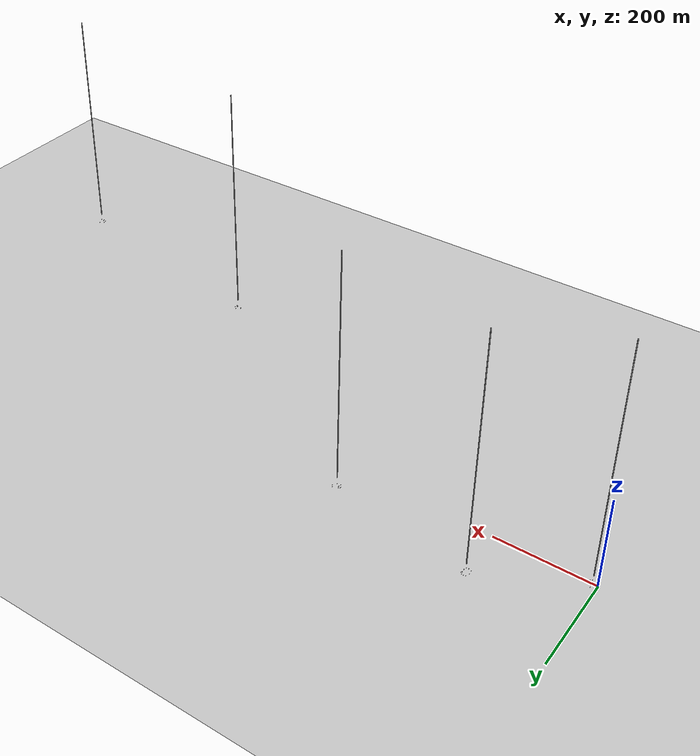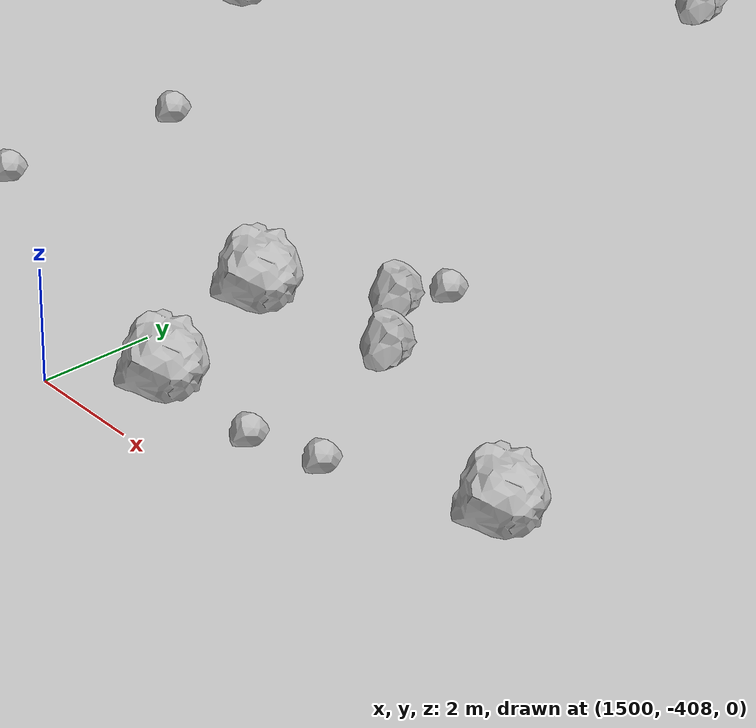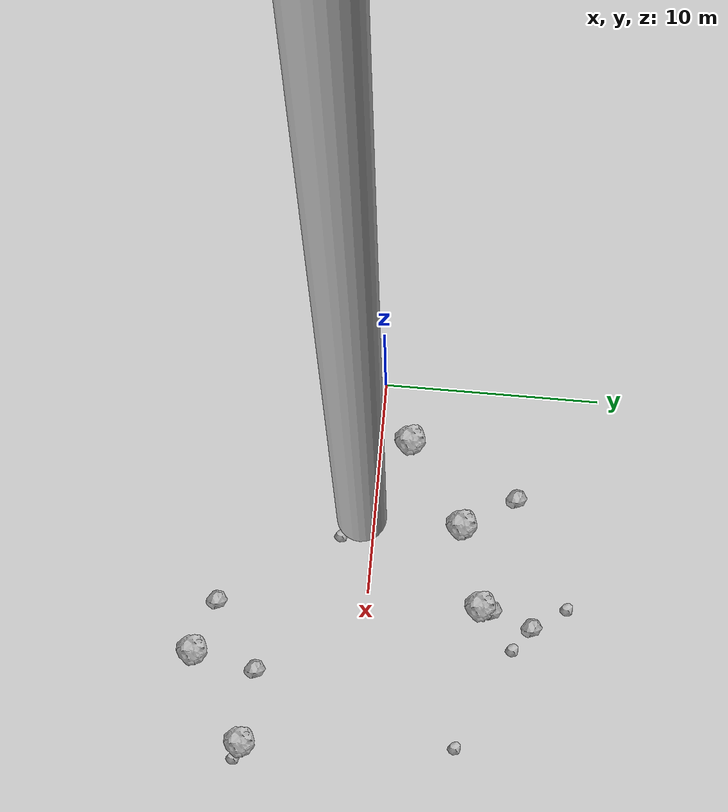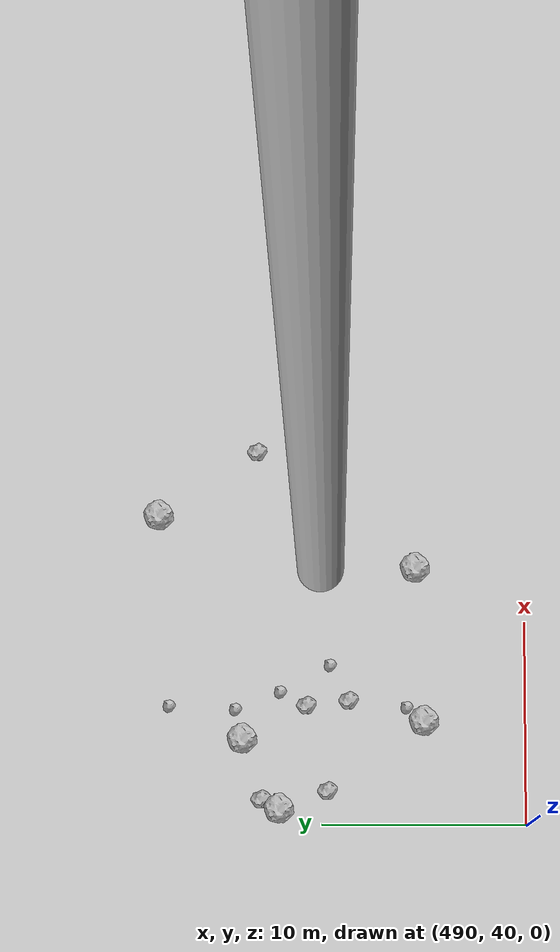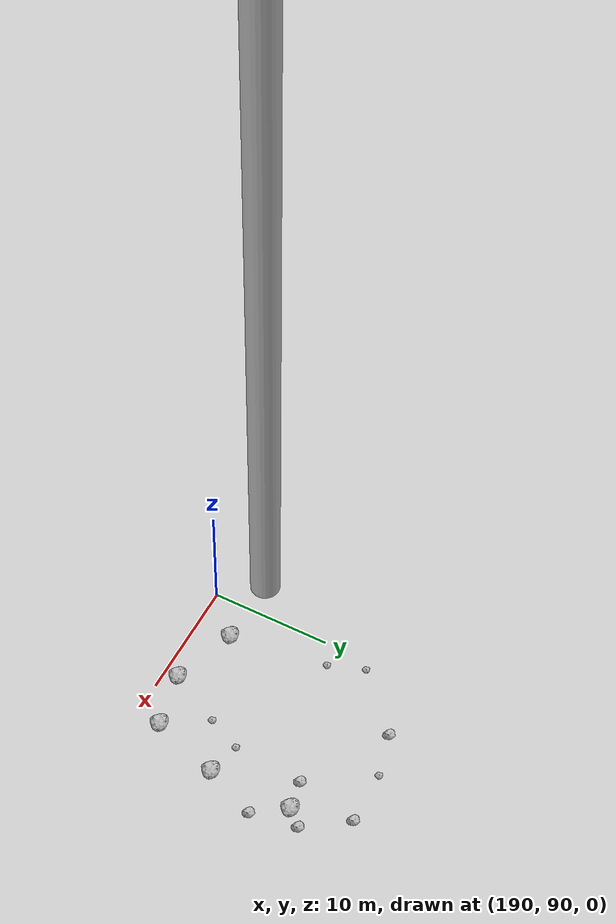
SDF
<?xml version="1.0" ?>
<sdf version="1.6">
  <world name="default">

    <include>
      <uri>model://custom_ground</uri>
    </include>

    <include>
      <uri>model://sun</uri>
    </include>

    <spherical_coordinates>
      <surface_model>EARTH_WGS84</surface_model>
      <latitude_deg>38.161479</latitude_deg>
      <longitude_deg>-122.454630</longitude_deg>
      <elevation>488.0</elevation>
      <heading_deg>90</heading_deg>
    </spherical_coordinates>

    <model name="rock1_0_0">
      <include>
        <uri>model://rock1</uri>
        <pose>13.43947939699105 -7.893989435164322 0.5 0 0 0</pose>
      </include>
    </model>
    <model name="rock1_0_1">
      <include>
        <uri>model://rock1</uri>
        <pose>10.278590785092419 5.275885005574189 0.5 0 0 0</pose>
      </include>
    </model>
    <model name="rock1_0_2">
      <include>
        <uri>model://rock1</uri>
        <pose>17.512026884619065 -5.30303912134465 0.5 0 0 0</pose>
      </include>
    </model>
    <model name="rock1_0_3">
      <include>
        <uri>model://rock1</uri>
        <pose>2.68650583499608 1.3538754878801118 0.5 0 0 0</pose>
      </include>
    </model>
    <model name="rock1_0_4">
      <include>
        <uri>model://rock1</uri>
        <pose>6.507952851055441 4.085987491831842 0.5 0 0 0</pose>
      </include>
    </model>
    <model name="rock2_0_0">
      <include>
        <uri>model://rock2</uri>
        <pose>10.954935267424323 -6.97274301312717 0.3 0 0 0</pose>
      </include>
    </model>
    <model name="rock2_0_1">
      <include>
        <uri>model://rock2</uri>
        <pose>11.044404933549345 7.736497389447649 0.3 0 0 0</pose>
      </include>
    </model>
    <model name="rock2_0_2">
      <include>
        <uri>model://rock2</uri>
        <pose>5.019256613500451 6.562638726598454 0.3 0 0 0</pose>
      </include>
    </model>
    <model name="rock2_0_3">
      <include>
        <uri>model://rock2</uri>
        <pose>10.392434274536814 5.816573287386026 0.3 0 0 0</pose>
      </include>
    </model>
    <model name="rock2_0_4">
      <include>
        <uri>model://rock2</uri>
        <pose>14.040162396159676 -4.909503907297552 0.3 0 0 0</pose>
      </include>
    </model>
    <model name="rock3_0_0">
      <include>
        <uri>model://rock3</uri>
        <pose>16.91205189435077 4.599198794809837 0.2 0 0 0</pose>
      </include>
    </model>
    <model name="rock3_0_1">
      <include>
        <uri>model://rock3</uri>
        <pose>12.138910080948467 6.8985925463445845 0.2 0 0 0</pose>
      </include>
    </model>
    <model name="rock3_0_2">
      <include>
        <uri>model://rock3</uri>
        <pose>10.020214936842125 9.281012461396593 0.2 0 0 0</pose>
      </include>
    </model>
    <model name="rock3_0_3">
      <include>
        <uri>model://rock3</uri>
        <pose>18.213776399475588 -5.568404411075212 0.2 0 0 0</pose>
      </include>
    </model>
    <model name="rock3_0_4">
      <include>
        <uri>model://rock3</uri>
        <pose>7.421650577738075 -1.486453710931757 0.2 0 0 0</pose>
      </include>
    </model>
    <model name="rock1_1_0">
      <include>
        <uri>model://rock1</uri>
        <pose>203.00260534594247 92.16119730530531 0.5 0 0 0</pose>
      </include>
    </model>
    <model name="rock1_1_1">
      <include>
        <uri>model://rock1</uri>
        <pose>198.6162523517288 91.25032018407698 0.5 0 0 0</pose>
      </include>
    </model>
    <model name="rock1_1_2">
      <include>
        <uri>model://rock1</uri>
        <pose>204.73223575123927 97.700712433322 0.5 0 0 0</pose>
      </include>
    </model>
    <model name="rock1_1_3">
      <include>
        <uri>model://rock1</uri>
        <pose>204.70719715123272 104.48081057962973 0.5 0 0 0</pose>
      </include>
    </model>
    <model name="rock1_1_4">
      <include>
        <uri>model://rock1</uri>
        <pose>193.31974319146545 93.02261638565943 0.5 0 0 0</pose>
      </include>
    </model>
    <model name="rock2_1_0">
      <include>
        <uri>model://rock2</uri>
        <pose>206.39006293392737 101.93136643001995 0.3 0 0 0</pose>
      </include>
    </model>
    <model name="rock2_1_1">
      <include>
        <uri>model://rock2</uri>
        <pose>205.7095563891509 105.71319318646202 0.3 0 0 0</pose>
      </include>
    </model>
    <model name="rock2_1_2">
      <include>
        <uri>model://rock2</uri>
        <pose>202.2868063737719 104.1128232450471 0.3 0 0 0</pose>
      </include>
    </model>
    <model name="rock2_1_3">
      <include>
        <uri>model://rock2</uri>
        <pose>195.4424330425876 108.28004880650863 0.3 0 0 0</pose>
      </include>
    </model>
    <model name="rock2_1_4">
      <include>
        <uri>model://rock2</uri>
        <pose>203.29464059862082 109.10510347406517 0.3 0 0 0</pose>
      </include>
    </model>
    <model name="rock3_1_0">
      <include>
        <uri>model://rock3</uri>
        <pose>198.96362556046088 109.08876489336272 0.2 0 0 0</pose>
      </include>
    </model>
    <model name="rock3_1_1">
      <include>
        <uri>model://rock3</uri>
        <pose>200.68598480459372 95.55479064614987 0.2 0 0 0</pose>
      </include>
    </model>
    <model name="rock3_1_2">
      <include>
        <uri>model://rock3</uri>
        <pose>191.96975020106535 101.11742452884059 0.2 0 0 0</pose>
      </include>
    </model>
    <model name="rock3_1_3">
      <include>
        <uri>model://rock3</uri>
        <pose>190.8978341064829 104.05865344129731 0.2 0 0 0</pose>
      </include>
    </model>
    <model name="rock3_1_4">
      <include>
        <uri>model://rock3</uri>
        <pose>201.93144769348277 98.33805071395753 0.2 0 0 0</pose>
      </include>
    </model>
    <model name="rock1_2_0">
      <include>
        <uri>model://rock1</uri>
        <pose>495.13255220728297 45.00849420886321 0.5 0 0 0</pose>
      </include>
    </model>
    <model name="rock1_2_1">
      <include>
        <uri>model://rock1</uri>
        <pose>494.2566152926469 53.91661850003762 0.5 0 0 0</pose>
      </include>
    </model>
    <model name="rock1_2_2">
      <include>
        <uri>model://rock1</uri>
        <pose>505.2997054728209 58.10176825526361 0.5 0 0 0</pose>
      </include>
    </model>
    <model name="rock1_2_3">
      <include>
        <uri>model://rock1</uri>
        <pose>490.83927251917254 52.09922809410486 0.5 0 0 0</pose>
      </include>
    </model>
    <model name="rock1_2_4">
      <include>
        <uri>model://rock1</uri>
        <pose>502.70032723251705 45.442972972813266 0.5 0 0 0</pose>
      </include>
    </model>
    <model name="rock2_2_0">
      <include>
        <uri>model://rock2</uri>
        <pose>491.2836902389903 53.0054441314143 0.3 0 0 0</pose>
      </include>
    </model>
    <model name="rock2_2_1">
      <include>
        <uri>model://rock2</uri>
        <pose>508.4784671774544 53.249576793728366 0.3 0 0 0</pose>
      </include>
    </model>
    <model name="rock2_2_2">
      <include>
        <uri>model://rock2</uri>
        <pose>491.6908047616029 49.73870167471039 0.3 0 0 0</pose>
      </include>
    </model>
    <model name="rock2_2_3">
      <include>
        <uri>model://rock2</uri>
        <pose>496.12255980607307 48.70611892519618 0.3 0 0 0</pose>
      </include>
    </model>
    <model name="rock2_2_4">
      <include>
        <uri>model://rock2</uri>
        <pose>495.88222767269076 50.779235406488574 0.3 0 0 0</pose>
      </include>
    </model>
    <model name="rock3_2_0">
      <include>
        <uri>model://rock3</uri>
        <pose>495.6586215386393 54.25210349752388 0.2 0 0 0</pose>
      </include>
    </model>
    <model name="rock3_2_1">
      <include>
        <uri>model://rock3</uri>
        <pose>495.7589094972939 45.83002038593861 0.2 0 0 0</pose>
      </include>
    </model>
    <model name="rock3_2_2">
      <include>
        <uri>model://rock3</uri>
        <pose>495.8220574721803 57.51308309832901 0.2 0 0 0</pose>
      </include>
    </model>
    <model name="rock3_2_3">
      <include>
        <uri>model://rock3</uri>
        <pose>497.840121304499 49.600430480928395 0.2 0 0 0</pose>
      </include>
    </model>
    <model name="rock3_2_4">
      <include>
        <uri>model://rock3</uri>
        <pose>496.51619322779226 52.046358127204066 0.2 0 0 0</pose>
      </include>
    </model>
    <model name="rock1_3_0">
      <include>
        <uri>model://rock1</uri>
        <pose>1003.9145145629221 -302.4247772641315 0.5 0 0 0</pose>
      </include>
    </model>
    <model name="rock1_3_1">
      <include>
        <uri>model://rock1</uri>
        <pose>1005.5807162009686 -302.43952272257843 0.5 0 0 0</pose>
      </include>
    </model>
    <model name="rock1_3_2">
      <include>
        <uri>model://rock1</uri>
        <pose>994.067142896119 -300.30921503141656 0.5 0 0 0</pose>
      </include>
    </model>
    <model name="rock1_3_3">
      <include>
        <uri>model://rock1</uri>
        <pose>1002.1536065080859 -293.60591897694314 0.5 0 0 0</pose>
      </include>
    </model>
    <model name="rock1_3_4">
      <include>
        <uri>model://rock1</uri>
        <pose>1007.1112620216772 -298.276716148978 0.5 0 0 0</pose>
      </include>
    </model>
    <model name="rock2_3_0">
      <include>
        <uri>model://rock2</uri>
        <pose>994.4787779243297 -301.8374037452367 0.3 0 0 0</pose>
      </include>
    </model>
    <model name="rock2_3_1">
      <include>
        <uri>model://rock2</uri>
        <pose>997.9031950964435 -309.29488043685984 0.3 0 0 0</pose>
      </include>
    </model>
    <model name="rock2_3_2">
      <include>
        <uri>model://rock2</uri>
        <pose>992.114439621502 -305.9984343774131 0.3 0 0 0</pose>
      </include>
    </model>
    <model name="rock2_3_3">
      <include>
        <uri>model://rock2</uri>
        <pose>994.5010654386391 -293.32343298895427 0.3 0 0 0</pose>
      </include>
    </model>
    <model name="rock2_3_4">
      <include>
        <uri>model://rock2</uri>
        <pose>997.9572106222395 -295.7012304587511 0.3 0 0 0</pose>
      </include>
    </model>
    <model name="rock3_3_0">
      <include>
        <uri>model://rock3</uri>
        <pose>999.8806161910519 -294.67763115485747 0.2 0 0 0</pose>
      </include>
    </model>
    <model name="rock3_3_1">
      <include>
        <uri>model://rock3</uri>
        <pose>1006.2732146861136 -300.6232112161667 0.2 0 0 0</pose>
      </include>
    </model>
    <model name="rock3_3_2">
      <include>
        <uri>model://rock3</uri>
        <pose>1001.7150817784368 -301.7498363091005 0.2 0 0 0</pose>
      </include>
    </model>
    <model name="rock3_3_3">
      <include>
        <uri>model://rock3</uri>
        <pose>1004.721411763491 -291.9000024380229 0.2 0 0 0</pose>
      </include>
    </model>
    <model name="rock3_3_4">
      <include>
        <uri>model://rock3</uri>
        <pose>1007.1837503012647 -304.7941691503442 0.2 0 0 0</pose>
      </include>
    </model>
    <model name="rock1_4_0">
      <include>
        <uri>model://rock1</uri>
        <pose>1501.3755556216558 -406.75231231704726 0.5 0 0 0</pose>
      </include>
    </model>
    <model name="rock1_4_1">
      <include>
        <uri>model://rock1</uri>
        <pose>1501.8421262500315 -393.050037082659 0.5 0 0 0</pose>
      </include>
    </model>
    <model name="rock1_4_2">
      <include>
        <uri>model://rock1</uri>
        <pose>1491.8855403087846 -397.71113415374214 0.5 0 0 0</pose>
      </include>
    </model>
    <model name="rock1_4_3">
      <include>
        <uri>model://rock1</uri>
        <pose>1500.2414916841228 -403.9881838422458 0.5 0 0 0</pose>
      </include>
    </model>
    <model name="rock1_4_4">
      <include>
        <uri>model://rock1</uri>
        <pose>1507.500443666613 -405.2179383400766 0.5 0 0 0</pose>
      </include>
    </model>
    <model name="rock2_4_0">
      <include>
        <uri>model://rock2</uri>
        <pose>1501.8139022437806 -402.44454430184 0.3 0 0 0</pose>
      </include>
    </model>
    <model name="rock2_4_1">
      <include>
        <uri>model://rock2</uri>
        <pose>1502.996146989117 -393.8379717555115 0.3 0 0 0</pose>
      </include>
    </model>
    <model name="rock2_4_2">
      <include>
        <uri>model://rock2</uri>
        <pose>1491.9940598280693 -405.76408525111583 0.3 0 0 0</pose>
      </include>
    </model>
    <model name="rock2_4_3">
      <include>
        <uri>model://rock2</uri>
        <pose>1497.6066135290112 -391.9362723887275 0.3 0 0 0</pose>
      </include>
    </model>
    <model name="rock2_4_4">
      <include>
        <uri>model://rock2</uri>
        <pose>1502.8646183523958 -403.5036577232074 0.3 0 0 0</pose>
      </include>
    </model>
    <model name="rock3_4_0">
      <include>
        <uri>model://rock3</uri>
        <pose>1504.5633085912332 -406.2786107250226 0.2 0 0 0</pose>
      </include>
    </model>
    <model name="rock3_4_1">
      <include>
        <uri>model://rock3</uri>
        <pose>1494.4314412748474 -404.6583379415704 0.2 0 0 0</pose>
      </include>
    </model>
    <model name="rock3_4_2">
      <include>
        <uri>model://rock3</uri>
        <pose>1503.2920953484631 -406.65860536227706 0.2 0 0 0</pose>
      </include>
    </model>
    <model name="rock3_4_3">
      <include>
        <uri>model://rock3</uri>
        <pose>1502.0142016444893 -401.59353208587675 0.2 0 0 0</pose>
      </include>
    </model>
    <model name="rock3_4_4">
      <include>
        <uri>model://rock3</uri>
        <pose>1494.5673343847666 -401.34466381236194 0.2 0 0 0</pose>
      </include>
    </model>

    <model name="cylinder_1">
      <static>true</static>
      <link name="link">
        <visual name="visual">
          <geometry>
            <cylinder>
              <radius>1</radius>
              <length>500</length>
            </cylinder>
          </geometry>
        </visual>
      </link>
      <pose>10 0 270 0 0 0</pose>
    </model>

    <model name="cylinder_2">
      <static>true</static>
      <link name="link">
        <visual name="visual">
          <geometry>
            <cylinder>
              <radius>1</radius>
              <length>500</length>
            </cylinder>
          </geometry>
        </visual>
      </link>
      <pose>200 100 270 0 0 0</pose>
    </model>

    <model name="cylinder_3">
      <static>true</static>
      <link name="link">
        <visual name="visual">
          <geometry>
            <cylinder>
              <radius>1</radius>
              <length>500</length>
            </cylinder>
          </geometry>
        </visual>
      </link>
      <pose>500 50 270 0 0 0</pose>
    </model>

    <model name="cylinder_4">
      <static>true</static>
      <link name="link">
        <visual name="visual">
          <geometry>
            <cylinder>
              <radius>1</radius>
              <length>500</length>
            </cylinder>
          </geometry>
        </visual>
      </link>
      <pose>1000 -300 270 0 0 0</pose>
    </model>

    <model name="cylinder_5">
      <static>true</static>
      <link name="link">
        <visual name="visual">
          <geometry>
            <cylinder>
              <radius>1</radius>
              <length>500</length>
            </cylinder>
          </geometry>
        </visual>
      </link>
      <pose>1500 -400 270 0 0 0</pose>
    </model>

  </world>
</sdf>

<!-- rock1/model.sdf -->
<sdf version="1.6">
  <model name="rock1">
    <static>true</static> <!-- Set to true if the model should not move -->
    <pose>0 0 0 0 0 0</pose>

    <!--z offset is 0.5 for full scale-->

    <link name="link">
      <collision name="rock1_collision">
        <geometry>
          <mesh>
            <uri>model://meshes/rock1.dae</uri>
          </mesh>
        </geometry>
      </collision>
      <visual name="rock1_visual">
        <geometry>
          <mesh>
            <uri>model://meshes/rock1.dae</uri>
          </mesh>
        </geometry>
        <material>
          <script>
            <uri>model://materials/scripts/sand_pebbles.material</uri>
            <name>custom_ground/Image</name>
          </script>
        </material>
      </visual>
    </link>
  </model>
</sdf>

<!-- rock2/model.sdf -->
<sdf version="1.6">
  <model name="rock2">
    <static>true</static> <!-- Set to true if the model should not move -->
    <pose>0 0 0 0 0 0</pose>

    <!--z offset is 0.3 for full scale-->

    <link name="link">
      <collision name="rock2_collision">
        <geometry>
          <mesh>
            <uri>model://meshes/rock2.dae</uri>
          </mesh>
        </geometry>
      </collision>
      <visual name="rock2_visual">
        <geometry>
          <mesh>
            <uri>model://meshes/rock2.dae</uri>
          </mesh>
        </geometry>
        <material>
          <script>
            <uri>model://materials/scripts/sand_pebbles.material</uri>
            <name>custom_ground/Image</name>
          </script>
        </material>
      </visual>
    </link>
  </model>
</sdf>

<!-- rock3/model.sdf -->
<sdf version="1.6">
  <model name="rock3">
    <static>true</static> <!-- Set to true if the model should not move -->
    <pose>0 0 0 0 0 0</pose>

    <!--z offset is 0.2 for full scale-->

    <link name="link">
      <collision name="rock3_collision">
        <geometry>
          <mesh>
            <uri>model://meshes/rock3.dae</uri>
          </mesh>
        </geometry>
      </collision>
      <visual name="rock3_visual">
        <geometry>
          <mesh>
            <uri>model://meshes/rock3.dae</uri>
          </mesh>
        </geometry>
        <material>
          <script>
            <uri>model://materials/scripts/sand_pebbles.material</uri>
            <name>custom_ground/Image</name>
          </script>
        </material>
      </visual>
    </link>
  </model>
</sdf>

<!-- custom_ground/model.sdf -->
<sdf version="1.6">
  <model name="custom_ground">
    <static>true</static> <!-- Ground is static and immovable -->
    <link name="ground_link">
      <pose>240 0 0 0 0 0</pose> <!-- Position and orientation relative to the world -->
      <!-- Visual Representation -->
      <visual name="ground_visual">
        <geometry>
          <plane>
            <normal>0 0 1</normal> <!-- Upward facing plane -->
            <size>500 500</size> <!-- Size of the plane -->
          </plane>
        </geometry>
        <material>
          <script>
            <uri>model://materials/scripts/sand_pebbles.material</uri>
            <name>custom_ground/Image</name>
          </script>
        </material>
      </visual>

      <!-- Collision Representation -->
      <collision name="ground_collision">
        <geometry>
          <plane>
            <normal>0 0 1</normal>
            <size>100 100</size>
          </plane>
        </geometry>
      </collision>

    </link>
  </model>
</sdf>
